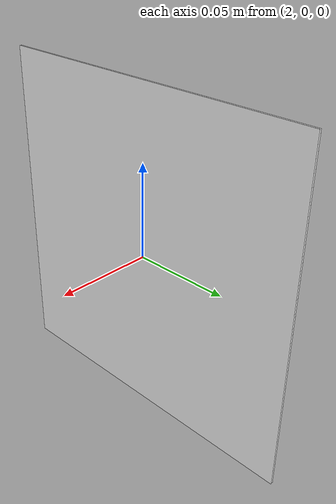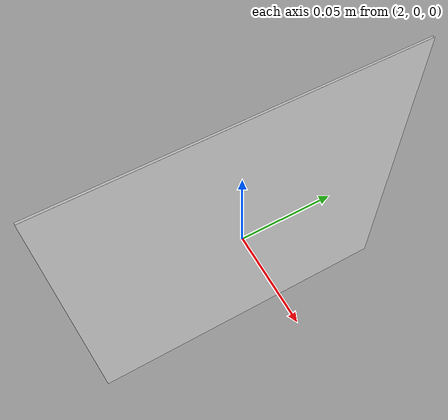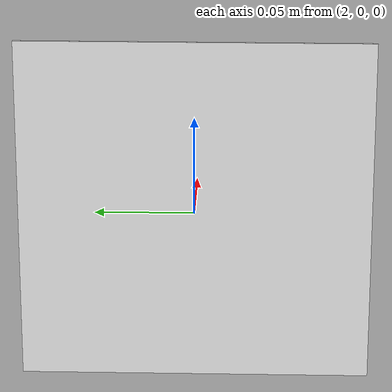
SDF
<?xml version="1.0"?>

<sdf version="1.6">
  <world name="default">

    <include>
      <uri>model://sun</uri>
    </include>

    <model name="marker_00">
      <include>
        <static>true</static>
        <uri>model://aruco_6x6_marker_00</uri>
      </include>
      <pose>2 0 0 0 -1.5707963267948966 0</pose>
    </model>
  </world>
</sdf>

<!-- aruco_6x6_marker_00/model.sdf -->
<sdf version='1.5'>
  <model name='aruco_6x6_marker_00'>

    <link name='marker'>
      <pose frame=''>0 0 0 0 0 0</pose>
      <visual name='visual'>
        <geometry>
          <box>
            <size>0.1778 0.1778 1e-5</size>
          </box>
        </geometry>
        <material>
          <script>
            <uri>model://aruco_6x6_marker_00/materials/scripts</uri>
            <uri>model://aruco_6x6_marker_00/materials/textures</uri>
            <name>visual_aruco_6x6_marker_00/Marker</name>
          </script>
          <ambient>1 1 1 1</ambient>
          <diffuse>1 1 1 1</diffuse>
          <specular>0 0 0 1</specular>
          <emissive>1 1 1 0</emissive>
          <shader type='vertex'>
            <normal_map>__default__</normal_map>
          </shader>
        </material>
        <pose frame=''>0 0 0 0 0 0</pose>
        <cast_shadows>1</cast_shadows>
        <transparency>0</transparency>
      </visual>
      <collision name='collision'>
        <laser_retro>0</laser_retro>
        <max_contacts>10</max_contacts>
        <pose frame=''>0 0 0 0 0 0</pose>
        <geometry>
          <box>
            <size>0.1778 0.1778 1e-05</size>
          </box>
        </geometry>
      </collision>
    </link>

    <link name='marker_pad'>
      <pose frame='marker'>0 0 -1e-3 0 0 0</pose>
      <visual name='visual'>
        <geometry>
          <box>
            <size>0.1778 0.1778 1e-5</size>
          </box>
        </geometry>
        <material>
          <lighting>1</lighting>
          <script>
            <uri>file://media/materials/scripts/gazebo.material</uri>
            <name>Gazebo/White</name>
          </script>
          <ambient>0.3 0.3 0.3 1</ambient>
          <diffuse>0.7 0.7 0.7 1</diffuse>
          <specular>0.01 0.01 0.01 1</specular>
          <emissive>1 1 1 0</emissive>
          <shader type='vertex'>
            <normal_map>__default__</normal_map>
          </shader>
        </material>
        <cast_shadows>1</cast_shadows>
        <transparency>0</transparency>
      </visual>
      <collision name='collision'>
        <laser_retro>0</laser_retro>
        <max_contacts>10</max_contacts>
        <pose frame=''>0 0 0 0 0 0</pose>
        <geometry>
          <box>
            <size>0.1778 0.1778 1e-5</size>
          </box>
        </geometry>
      </collision>
    </link>

    <joint name='marker_JOINT_marker_pad' type='revolute'>
      <parent>marker</parent>
      <child>marker_pad</child>
      <pose frame=''>0 0 0 0 0 0</pose>
      <axis>
        <xyz>0 0 1</xyz>
        <limit>
          <upper>0</upper>
          <lower>0</lower>
        </limit>
      </axis>
    </joint>

    <static>1</static>
    <allow_auto_disable>1</allow_auto_disable>

  </model>
</sdf>
